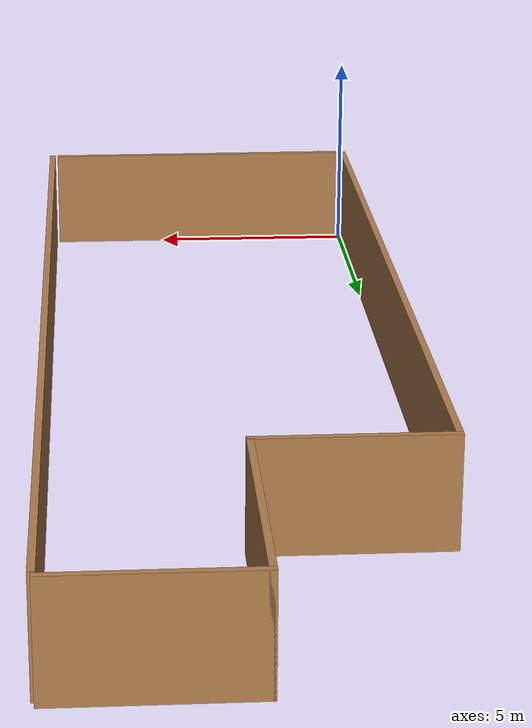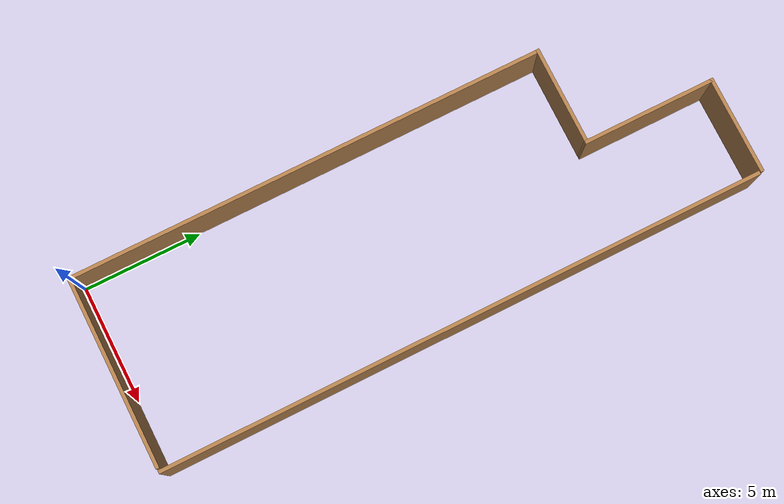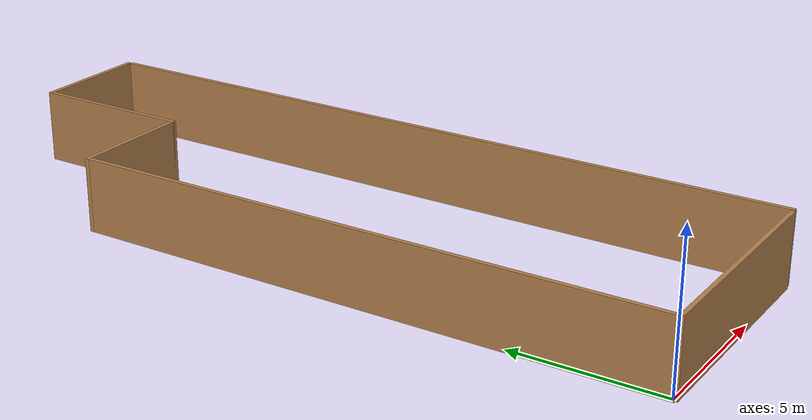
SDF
<?xml version='1.0'?>
<sdf version='1.7'>
  <model name='BT7-8'>
    <pose>3.99452 12.7125 0 0 -0 0</pose>
    <link name='Wall_26'>
      <collision name='Wall_26_Collision'>
        <geometry>
          <box>
            <size>20 0.15 2.5</size>
          </box>
        </geometry>
        <pose>0 0 1.25 0 -0 0</pose>
      </collision>
      <visual name='Wall_26_Visual'>
        <pose>0 0 1.25 0 -0 0</pose>
        <geometry>
          <box>
            <size>20 0.15 2.5</size>
          </box>
        </geometry>
        <material>
          <script>
            <uri>file://media/materials/scripts/gazebo.material</uri>
            <name>Gazebo/Wood</name>
          </script>
          <ambient>1 1 1 1</ambient>
        </material>
        <meta>
          <layer>0</layer>
        </meta>
      </visual>
      <pose>-4.06952 -2.7875 0 0 -0 1.5708</pose>
    </link>
    <link name='Wall_28'>
      <collision name='Wall_28_Collision'>
        <geometry>
          <box>
            <size>8 0.15 2.5</size>
          </box>
        </geometry>
        <pose>0 0 1.25 0 -0 0</pose>
      </collision>
      <visual name='Wall_28_Visual'>
        <pose>0 0 1.25 0 -0 0</pose>
        <geometry>
          <box>
            <size>8 0.15 2.5</size>
          </box>
        </geometry>
        <material>
          <script>
            <uri>file://media/materials/scripts/gazebo.material</uri>
            <name>Gazebo/Wood</name>
          </script>
          <ambient>1 1 1 1</ambient>
        </material>
        <meta>
          <layer>0</layer>
        </meta>
      </visual>
      <pose>-0.069521 -12.7875 0 0 -0 0</pose>
    </link>
    <link name='Wall_30'>
      <collision name='Wall_30_Collision'>
        <geometry>
          <box>
            <size>25.5 0.15 2.5</size>
          </box>
        </geometry>
        <pose>0 0 1.25 0 -0 0</pose>
      </collision>
      <visual name='Wall_30_Visual'>
        <pose>0 0 1.25 0 -0 0</pose>
        <geometry>
          <box>
            <size>25.5 0.15 2.5</size>
          </box>
        </geometry>
        <material>
          <script>
            <uri>file://media/materials/scripts/gazebo.material</uri>
            <name>Gazebo/Wood</name>
          </script>
          <ambient>1 1 1 1</ambient>
        </material>
        <meta>
          <layer>0</layer>
        </meta>
      </visual>
      <pose>4.06952 -0.0705 0 0 -0 1.5708</pose>
    </link>
    <link name='Wall_33'>
      <collision name='Wall_33_Collision'>
        <geometry>
          <box>
            <size>4.225 0.15 2.5</size>
          </box>
        </geometry>
        <pose>0 0 1.25 0 -0 0</pose>
      </collision>
      <visual name='Wall_33_Visual'>
        <pose>0 0 1.25 0 -0 0</pose>
        <geometry>
          <box>
            <size>4.225 0.15 2.5</size>
          </box>
        </geometry>
        <material>
          <script>
            <uri>file://media/materials/scripts/gazebo.material</uri>
            <name>Gazebo/Wood</name>
          </script>
          <ambient>1 1 1 1</ambient>
        </material>
        <meta>
          <layer>0</layer>
        </meta>
      </visual>
      <pose>-2.03202 7.2875 0 0 -0 0</pose>
    </link>
    <link name='Wall_34'>
      <collision name='Wall_34_Collision'>
        <geometry>
          <box>
            <size>5.65 0.15 2.5</size>
          </box>
        </geometry>
        <pose>0 0 1.25 0 -0 0</pose>
      </collision>
      <visual name='Wall_34_Visual'>
        <pose>0 0 1.25 0 -0 0</pose>
        <geometry>
          <box>
            <size>5.65 0.15 2.5</size>
          </box>
        </geometry>
        <material>
          <script>
            <uri>file://media/materials/scripts/gazebo.material</uri>
            <name>Gazebo/Wood</name>
          </script>
          <ambient>1 1 1 1</ambient>
        </material>
        <meta>
          <layer>0</layer>
        </meta>
      </visual>
      <pose>0.005479 10.0375 0 0 -0 1.5708</pose>
    </link>
    <link name='Wall_35'>
      <collision name='Wall_35_Collision'>
        <geometry>
          <box>
            <size>4.15 0.15 2.5</size>
          </box>
        </geometry>
        <pose>0 0 1.25 0 -0 0</pose>
      </collision>
      <visual name='Wall_35_Visual'>
        <pose>0 0 1.25 0 -0 0</pose>
        <geometry>
          <box>
            <size>4.15 0.15 2.5</size>
          </box>
        </geometry>
        <material>
          <script>
            <uri>file://media/materials/scripts/gazebo.material</uri>
            <name>Gazebo/Wood</name>
          </script>
          <ambient>1 1 1 1</ambient>
        </material>
        <meta>
          <layer>0</layer>
        </meta>
      </visual>
      <pose>2.00548 12.7875 0 0 -0 0</pose>
    </link>
    <static>1</static>
  </model>
</sdf>
